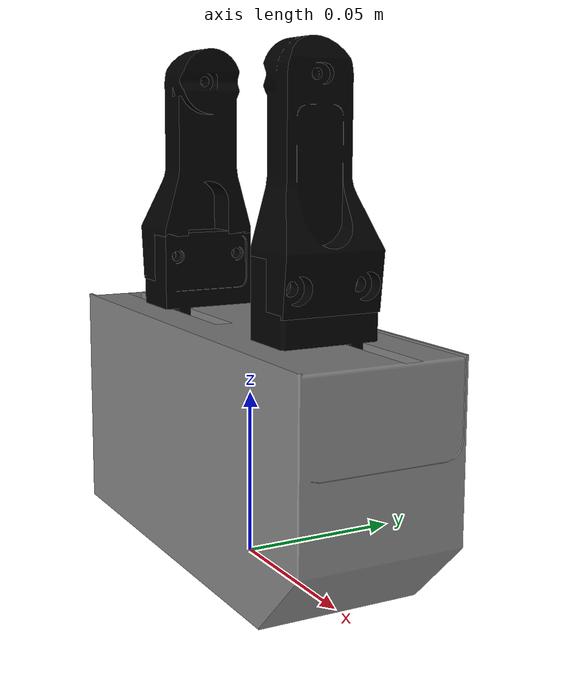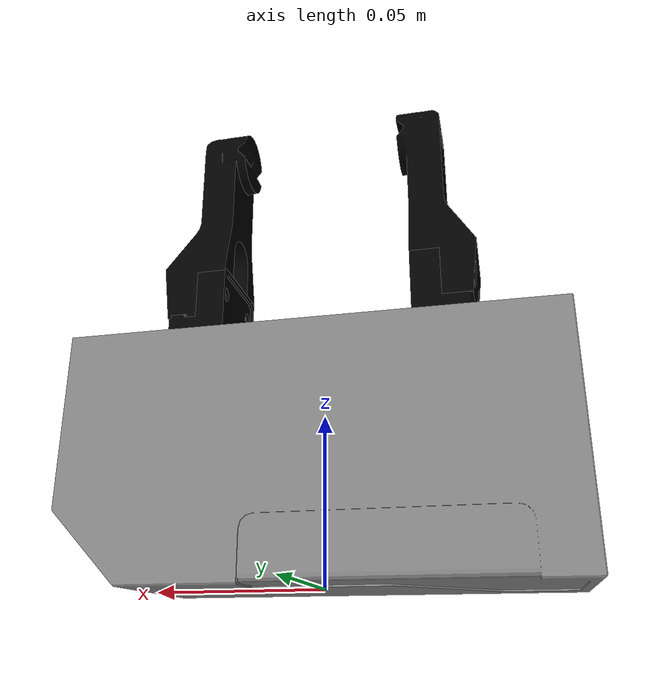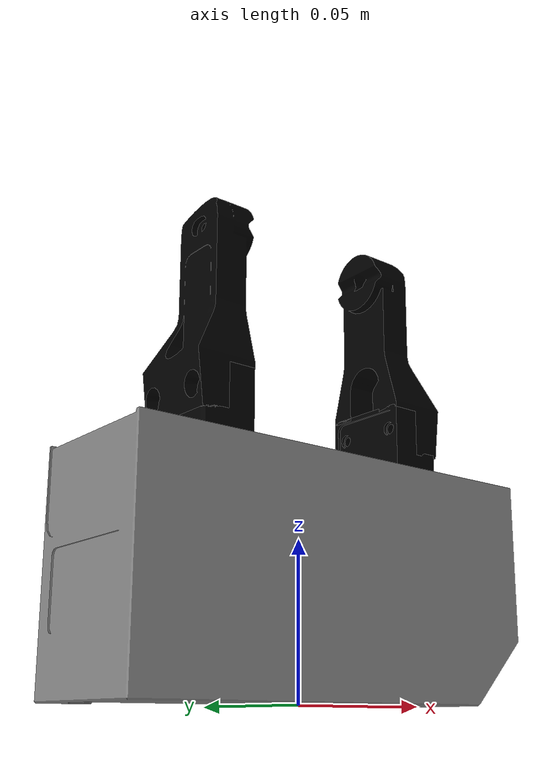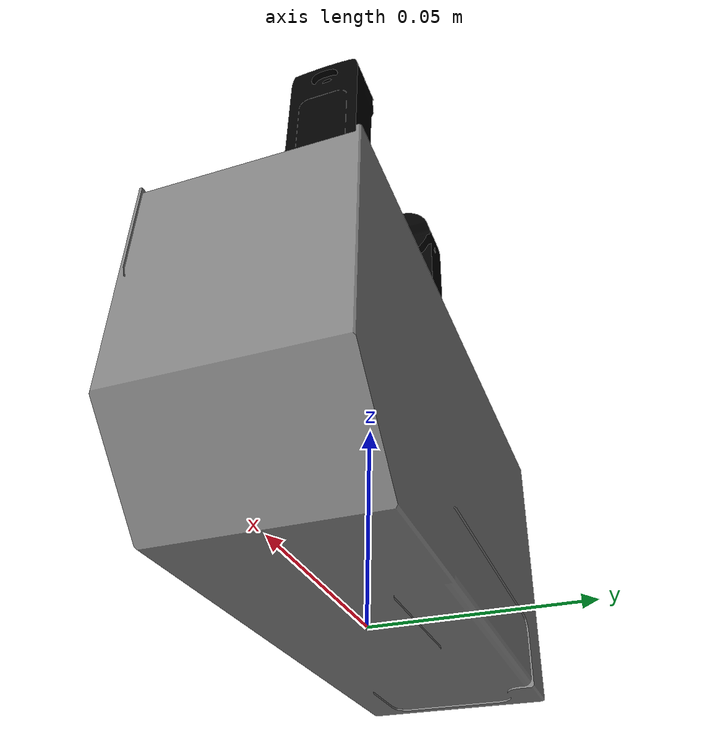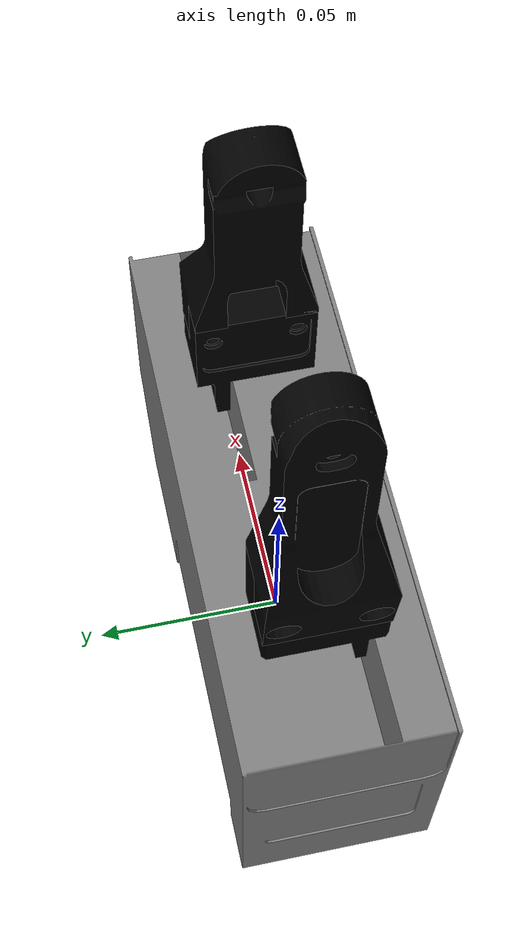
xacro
<?xml version="1.0"?>
<robot name="wsg_50" xmlns:xacro="http://www.ros.org/wiki/xacro">
  <!-- Imports the wsg_50 macro. -->
  <xacro:include filename="$(find wsg_50_description)/urdf/wsg_50.urdf.xacro"/>
  <xacro:arg default="wsg_50" name="robot_name"/>
  <xacro:arg default="world" name="parent"/>
  <!-- Instantiates a WSG 50 URDF model by calling the wsg_50 macro. -->
  <link name="world"></link>
  <xacro:wsg_50 name="$(arg robot_name)" parent="$(arg parent)">
    <origin rpy="0 0 0" xyz="0 0 0"/>
  </xacro:wsg_50>
</robot>

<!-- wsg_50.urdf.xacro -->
<robot name="wsg_50" xmlns:controller="http://playerstage.sourceforge.net/gazebo/xmlschema/#controller" xmlns:interface="http://playerstage.sourceforge.net/gazebo/xmlschema/#interface" xmlns:sensor="http://playerstage.sourceforge.net/gazebo/xmlschema/#sensor" xmlns:xacro="http://ros.org/wiki/xacro">
  <xacro:macro name="wsg_50" params="name parent *origin">
    <joint name="${name}_anterior_gripper_joint" type="fixed">
      <insert_block name="origin"/>
      <parent link="${parent}"/>
      <child link="${name}_base_link"/>
    </joint>
    <!-- BASE LINK -->
    <link name="${name}_base_link">
      <inertial>
        <mass value="1.2"/>
        <origin xyz="0 0 0"/>
        <inertia ixx="1.0" ixy="0.0" ixz="0.0" iyy="1.0" iyz="0.0" izz="1.0"/>
      </inertial>
      <visual>
        <origin rpy="0 0 0" xyz="0.0 0 0"/>
        <geometry>
          <mesh filename="package://wsg_50_description/meshes/WSG50_110.obj" scale="1 1 1"/>
        </geometry>
        <material name="grey">
          <color rgba="0.5 0.5 0.5 1"/>
        </material>
      </visual>
      <collision>
        <origin rpy="0 0 0" xyz="0.0 0 0"/>
        <geometry>
          <mesh filename="package://wsg_50_description/meshes/WSG50_110.obj" scale="1 1 1"/>
        </geometry>
      </collision>
    </link>
    <gazebo reference="${name}_base_link">
      <material>Gazebo/Grey</material>
      <turnGravityOff>false</turnGravityOff>
    </gazebo>
    <!-- GRIPPER LEFT -->
    <joint name="${name}_base_joint_gripper_left" type="prismatic">
      <limit effort="1.0" lower="-0.055" upper="-0.0027" velocity="1.0"/>
      <origin rpy="0 0 0" xyz="0 0 0"/>
      <!--origin xyz="-0.0067 0 0.049" rpy="0 0 0" /-->
      <parent link="${name}_base_link"/>
      <child link="${name}_gripper_left"/>
      <dynamics damping="100" friction="100"/>
      <axis xyz="1 0 0"/>
      <limit effort="100" velocity="100"/>
    </joint>
    <transmission name="${name}_base_trans_left" type="pr2_mechanism_model/SimpleTransmission">
      <actuator name="${name}_base_motor_left"/>
      <joint name="${name}_base_joint_gripper_left"/>
      <mechanicalReduction>1</mechanicalReduction>
      <motorTorqueConstant>1</motorTorqueConstant>
    </transmission>
    <link name="${name}_gripper_left">
      <inertial>
        <mass value="0.1"/>
        <origin xyz="0 0 0"/>
        <inertia ixx="1.0" ixy="0.0" ixz="0.0" iyy="1.0" iyz="0.0" izz="1.0"/>
      </inertial>
      <visual>
        <origin rpy="0 0 0" xyz="0.0 0 0"/>
        <geometry>
          <mesh filename="package://wsg_50_description/meshes/GUIDE_WSG50_110.obj" scale="0.001 0.001 0.001"/>
        </geometry>
        <material name="black">
          <color rgba="0 0 0 1"/>
        </material>
      </visual>
      <collision>
        <origin rpy="0 0 0" xyz="0 0 0"/>
        <geometry>
          <mesh filename="package://wsg_50_description/meshes/GUIDE_WSG50_110.obj" scale="0.001 0.001 0.001"/>
        </geometry>
      </collision>
      <contact_coefficients kd="1.0" kp="1000.0" mu="0"/>
    </link>
    <gazebo reference="${name}_gripper_left">
      <material>Gazebo/Blue</material>
      <turnGravityOff>false</turnGravityOff>
    </gazebo>
    <!-- LEFT FINGER -->
    <joint name="${name}_guide_joint_finger_left" type="fixed">
      <origin rpy="0 0 0" xyz="0 0 0.023"/>
      <parent link="${name}_gripper_left"/>
      <child link="${name}_finger_left"/>
      <dynamics damping="100" friction="100"/>
      <axis xyz="1 0 0"/>
      <limit effort="100" velocity="100"/>
    </joint>
    <link name="${name}_finger_left">
      <inertial>
        <mass value="0.1"/>
        <origin xyz="0 0 0"/>
        <inertia ixx="1.0" ixy="0.0" ixz="0.0" iyy="1.0" iyz="0.0" izz="1.0"/>
      </inertial>
      <visual>
        <origin rpy="0 0 0" xyz="0.0 0 0"/>
        <geometry>
          <mesh filename="package://wsg_50_description/meshes/WSG-FMF.obj" scale="0.001 0.001 0.001"/>
        </geometry>
        <material name="black">
          <color rgba="0 0 0 1"/>
        </material>
      </visual>
      <collision>
        <origin rpy="0 0 0" xyz="0 0 0"/>
        <geometry>
          <mesh filename="package://wsg_50_description/meshes/WSG-FMF.obj" scale="0.001 0.001 0.001"/>
        </geometry>
      </collision>
      <contact_coefficients kd="1.0" kp="1000.0" mu="0"/>
    </link>
    <gazebo reference="${name}_finger_left">
      <material>Gazebo/Blue</material>
      <turnGravityOff>false</turnGravityOff>
    </gazebo>
    <!-- GRIPPER RIGHT -->
    <joint name="${name}_base_joint_gripper_right" type="prismatic">
      <limit effort="1.0" lower="0.0027" upper="0.055" velocity="1.0"/>
      <origin rpy="0 0 3.14159" xyz="0 0 0"/>
      <parent link="${name}_base_link"/>
      <child link="${name}_gripper_right"/>
      <axis xyz="-1 0 0"/>
      <dynamics damping="100" friction="100"/>
      <limit effort="100" velocity="100"/>
    </joint>
    <transmission name="${name}_base_trans_right" type="pr2_mechanism_model/SimpleTransmission">
      <actuator name="${name}_base_motor_right"/>
      <joint name="${name}_base_joint_gripper_right"/>
      <mechanicalReduction>1</mechanicalReduction>
      <motorTorqueConstant>1</motorTorqueConstant>
    </transmission>
    <link name="${name}_gripper_right">
      <inertial>
        <mass value="0.1"/>
        <origin xyz="0 0 0"/>
        <inertia ixx="1.0" ixy="0.0" ixz="0.0" iyy="1.0" iyz="0.0" izz="1.0"/>
      </inertial>
      <visual>
        <origin rpy="0 0 0" xyz="0.0 0 0"/>
        <geometry>
          <mesh filename="package://wsg_50_description/meshes/GUIDE_WSG50_110.obj" scale="0.001 0.001 0.001"/>
        </geometry>
        <material name="black">
          <color rgba="0 0 0 1"/>
        </material>
      </visual>
      <collision>
        <origin rpy="0 0 0" xyz="0 0 0"/>
        <geometry>
          <mesh filename="package://wsg_50_description/meshes/GUIDE_WSG50_110.obj" scale="0.001 0.001 0.001"/>
        </geometry>
      </collision>
      <contact_coefficients kd="1.0" kp="1000.0" mu="0"/>
    </link>
    <gazebo reference="gripper_right">
      <material>Gazebo/White</material>
      <turnGravityOff>false</turnGravityOff>
    </gazebo>
    <!-- RIGHT FINGER -->
    <joint name="${name}_guide_joint_finger_right" type="fixed">
      <origin rpy="0 0 0" xyz="0 0 0.023"/>
      <parent link="${name}_gripper_right"/>
      <child link="${name}_finger_right"/>
      <dynamics damping="100" friction="100"/>
      <axis xyz="1 0 0"/>
      <limit effort="100" velocity="100"/>
    </joint>
    <link name="${name}_finger_right">
      <inertial>
        <mass value="0.1"/>
        <origin xyz="0 0 0"/>
        <inertia ixx="1.0" ixy="0.0" ixz="0.0" iyy="1.0" iyz="0.0" izz="1.0"/>
      </inertial>
      <visual>
        <origin rpy="0 0 0" xyz="0.0 0 0"/>
        <geometry>
          <mesh filename="package://wsg_50_description/meshes/WSG-FMF.obj" scale="0.001 0.001 0.001"/>
        </geometry>
        <material name="black">
          <color rgba="0 0 0 1"/>
        </material>
      </visual>
      <collision>
        <origin rpy="0 0 0" xyz="0 0 0"/>
        <geometry>
          <mesh filename="package://wsg_50_description/meshes/WSG-FMF.obj" scale="0.001 0.001 0.001"/>
        </geometry>
      </collision>
      <contact_coefficients kd="1.0" kp="1000.0" mu="0"/>
    </link>
    <gazebo reference="${name}_finger_right">
      <material>Gazebo/White</material>
      <turnGravityOff>false</turnGravityOff>
    </gazebo>
  </xacro:macro>
</robot>
